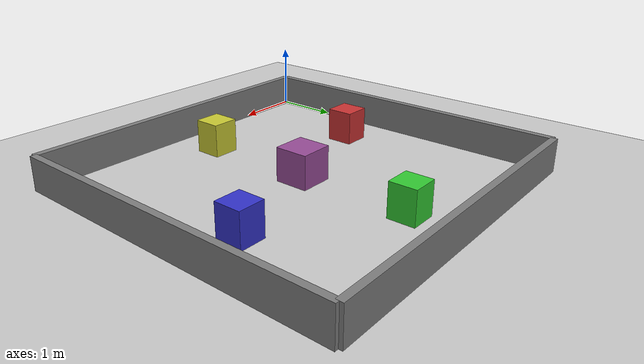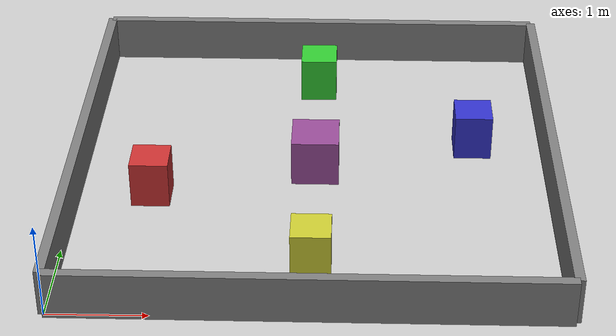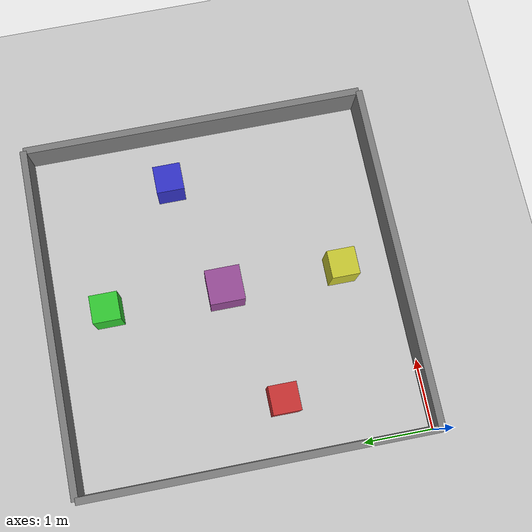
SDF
<?xml version="1.0" ?>
<sdf version="1.6">
  <world name="default">

    <!-- A global light source -->
    <include>
      <uri>model://sun</uri>
    </include>

    <!-- Ground Plane -->
    <include>
      <uri>model://ground_plane</uri>
    </include>

    <!-- 5x5 meter room walls -->
    <!-- Wall 1: Bottom (y=0) -->
    <model name="wall_bottom">
      <static>true</static>
      <pose>2.5 0 0.25 0 0 0</pose>
      <link name="link">
        <collision name="collision">
          <geometry>
            <box>
              <size>5.0 0.1 0.5</size>
            </box>
          </geometry>
        </collision>
        <visual name="visual">
          <geometry>
            <box>
              <size>5.0 0.1 0.5</size>
            </box>
          </geometry>
          <material>
            <ambient>0.5 0.5 0.5 1</ambient>
          </material>
        </visual>
      </link>
    </model>

    <!-- Wall 2: Top (y=5) -->
    <model name="wall_top">
      <static>true</static>
      <pose>2.5 5 0.25 0 0 0</pose>
      <link name="link">
        <collision name="collision">
          <geometry>
            <box>
              <size>5.0 0.1 0.5</size>
            </box>
          </geometry>
        </collision>
        <visual name="visual">
          <geometry>
            <box>
              <size>5.0 0.1 0.5</size>
            </box>
          </geometry>
          <material>
            <ambient>0.5 0.5 0.5 1</ambient>
          </material>
        </visual>
      </link>
    </model>

    <!-- Wall 3: Left (x=0) -->
    <model name="wall_left">
      <static>true</static>
      <pose>0 2.5 0.25 0 0 0</pose>
      <link name="link">
        <collision name="collision">
          <geometry>
            <box>
              <size>0.1 5.0 0.5</size>
            </box>
          </geometry>
        </collision>
        <visual name="visual">
          <geometry>
            <box>
              <size>0.1 5.0 0.5</size>
            </box>
          </geometry>
          <material>
            <ambient>0.5 0.5 0.5 1</ambient>
          </material>
        </visual>
      </link>
    </model>

    <!-- Wall 4: Right (x=5) -->
    <model name="wall_right">
      <static>true</static>
      <pose>5 2.5 0.25 0 0 0</pose>
      <link name="link">
        <collision name="collision">
          <geometry>
            <box>
              <size>0.1 5.0 0.5</size>
            </box>
          </geometry>
        </collision>
        <visual name="visual">
          <geometry>
            <box>
              <size>0.1 5.0 0.5</size>
            </box>
          </geometry>
          <material>
            <ambient>0.5 0.5 0.5 1</ambient>
          </material>
        </visual>
      </link>
    </model>

    <!-- Obstacle 1: Between Corner 1 and Corner 2 (left side) -->
    <model name="obstacle_1">
      <static>true</static>
      <pose>0.8 2.0 0.25 0 0 0</pose>
      <link name="link">
        <collision name="collision">
          <geometry>
            <box>
              <size>0.4 0.4 0.5</size>
            </box>
          </geometry>
        </collision>
        <visual name="visual">
          <geometry>
            <box>
              <size>0.4 0.4 0.5</size>
            </box>
          </geometry>
          <material>
            <ambient>0.8 0.2 0.2 1</ambient>
          </material>
        </visual>
      </link>
    </model>

    <!-- Obstacle 2: Between Corner 2 and Corner 3 (top side) -->
    <model name="obstacle_2">
      <static>true</static>
      <pose>2.5 4.2 0.25 0 0 0</pose>
      <link name="link">
        <collision name="collision">
          <geometry>
            <box>
              <size>0.4 0.4 0.5</size>
            </box>
          </geometry>
        </collision>
        <visual name="visual">
          <geometry>
            <box>
              <size>0.4 0.4 0.5</size>
            </box>
          </geometry>
          <material>
            <ambient>0.2 0.8 0.2 1</ambient>
          </material>
        </visual>
      </link>
    </model>

    <!-- Obstacle 3: Between Corner 3 and Corner 4 (right side) -->
    <model name="obstacle_3">
      <static>true</static>
      <pose>4.2 3.0 0.25 0 0 0</pose>
      <link name="link">
        <collision name="collision">
          <geometry>
            <box>
              <size>0.4 0.4 0.5</size>
            </box>
          </geometry>
        </collision>
        <visual name="visual">
          <geometry>
            <box>
              <size>0.4 0.4 0.5</size>
            </box>
          </geometry>
          <material>
            <ambient>0.2 0.2 0.8 1</ambient>
          </material>
        </visual>
      </link>
    </model>

    <!-- Obstacle 4: Between Corner 4 and Corner 1 (bottom side) -->
    <model name="obstacle_4">
      <static>true</static>
      <pose>2.5 0.8 0.25 0 0 0</pose>
      <link name="link">
        <collision name="collision">
          <geometry>
            <box>
              <size>0.4 0.4 0.5</size>
            </box>
          </geometry>
        </collision>
        <visual name="visual">
          <geometry>
            <box>
              <size>0.4 0.4 0.5</size>
            </box>
          </geometry>
          <material>
            <ambient>0.8 0.8 0.2 1</ambient>
          </material>
        </visual>
      </link>
    </model>

    <!-- Additional obstacle in center -->
    <model name="obstacle_center">
      <static>true</static>
      <pose>2.5 2.5 0.25 0 0 0</pose>
      <link name="link">
        <collision name="collision">
          <geometry>
            <box>
              <size>0.5 0.5 0.5</size>
            </box>
          </geometry>
        </collision>
        <visual name="visual">
          <geometry>
            <box>
              <size>0.5 0.5 0.5</size>
            </box>
          </geometry>
          <material>
            <ambient>0.6 0.3 0.6 1</ambient>
          </material>
        </visual>
      </link>
    </model>

  </world>
</sdf>
